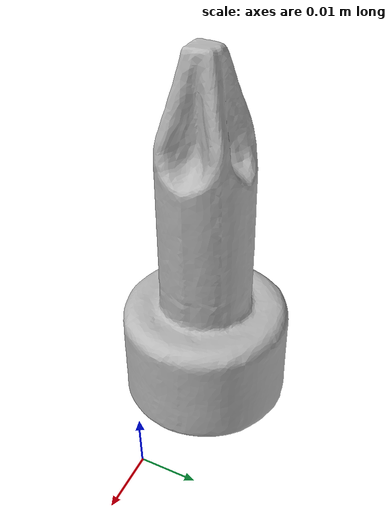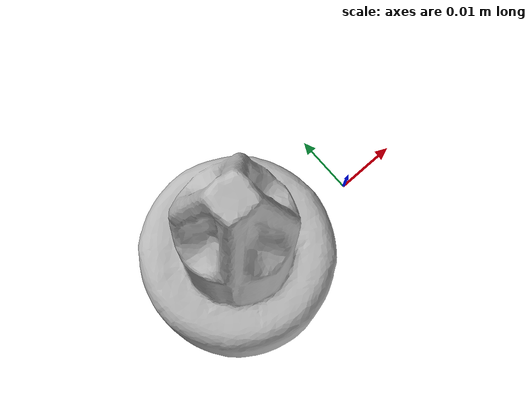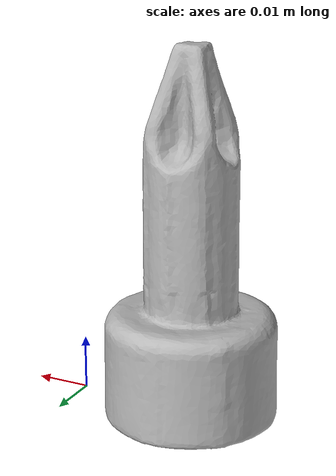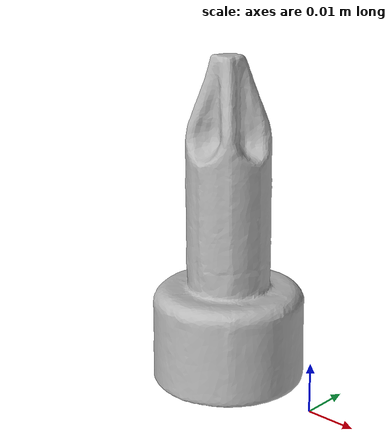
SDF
<?xml version='1.0'?>
<sdf version="1.4">
  <model name="d_toy_airplane">
    <static>false</static>
    <link name="link">
      <inertial>
        <pose>-0.02223323227368506 0.0014562790387810324 0.021303394508572174 -3.1360405723840357 -0.001389601996151077 -2.782071882834245</pose>
        <mass>1.8372956359595334e-05</mass>
        <inertia>
          <ixx>5.26514589784218e-09</ixx>
          <ixy>1.8612812045395852e-26</ixy>
          <ixz>1.2929067999711143e-25</ixz>
          <iyy>5.254940904438561e-09</iyy>
          <iyz>-6.328490719306292e-25</iyz>
          <izz>1.693480132738204e-09</izz>
        </inertia>
      </inertial>
      <collision name="collision">
        <geometry>
          <mesh>
            <!-- Use a downsampled mesh for collisions -->
            <uri>model://072-d_toy_airplane/google_16k/072-d_toy_airplane.obj</uri>
            </mesh>
        </geometry>
        <surface>
          <friction>
            <ode>
              <mu>0.9</mu>
              <mu2>0.9</mu2>
            </ode>
          </friction>
          <contact>
            <ode>
              <kp>1000000000000.0</kp>
              <kd>1</kd>
              <min_depth>0.0001</min_depth>
              <max_vel>0.01</max_vel>
            </ode>
          </contact>
          <bounce>
            <restitution_coefficient>0.1</restitution_coefficient>
            <threshold>1000.0</threshold>
          </bounce>
        </surface>
      </collision>
      <visual name="visual">
        <geometry>
          <mesh>
            <uri>model://072-d_toy_airplane/google_16k/072-d_toy_airplane.dae</uri>
            </mesh>
        </geometry>
      </visual>
    </link>
  </model>
</sdf>
